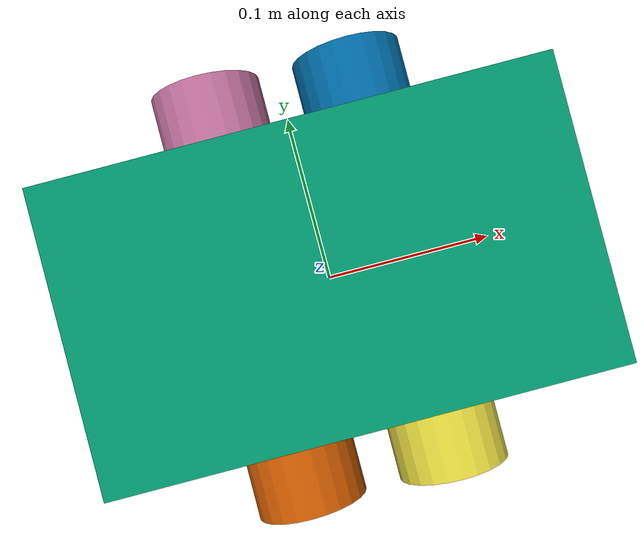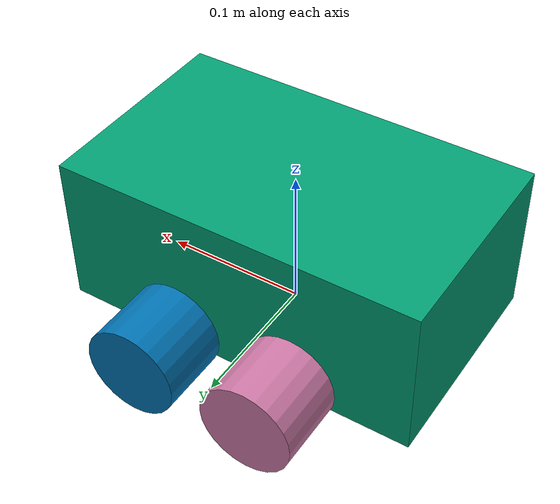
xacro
<?xml version="1.0"?>
<robot xmlns:xacro="http://www.ros.org/wiki/xacro">
	<!-- BASE LINK -->
	<link name="base_link">

	</link>

	<joint name="base_footprint_joint" type="fixed">
		<parent link="base_link"/>
		<child link="base_footprint"/>
		<origin xyz="0 0 0" rpy="0 0 0"/>
	</joint>

	<link name="base_footprint">
	</link>

	<!-- CHASSIS -->
	<joint name="chassis_joint" type="fixed">
		<parent link="base_link"/>
		<child link="chassis"/>
		<origin xyz="-0.1275 0 0"/>
	</joint>

	<link name="chassis">
		<visual>
			<origin xyz="0.1275 0 0.054"/>
			<geometry>
				<box size="0.255 0.151 0.108"/>
			</geometry>
		</visual>
	</link>

	<!-- FRONT RIGHT WHEEL -->
	<joint name="fr_wheel_joint" type="fixed">
		<parent link="base_link"/>
		<child link="fr_wheel"/>
		<origin xyz="0.043 -0.101 0.0125" rpy="${pi/2} 0 0"/>
	</joint>

	<link name="fr_wheel">
		<visual>
			<geometry>
				<cylinder radius="0.0325" length="0.051"/>
			</geometry>
		</visual>
	</link>

	<!-- FRONT LEFT WHEEL -->
	<joint name="fl_wheel_joint" type="fixed">
		<parent link="base_link"/>
		<child link="fl_wheel"/>
		<origin xyz="0.043 0.101 0.0125" rpy="-${pi/2} 0 0"/>
	</joint>

	<link name="fl_wheel">
		<visual>
			<geometry>
				<cylinder radius="0.0325" length="0.051"/>
			</geometry>
		</visual>
	</link>

	<!-- BACK RIGHT WHEEL -->
	<joint name="br_wheel_joint" type="fixed">
		<parent link="base_link"/>
		<child link="br_wheel"/>
		<origin xyz="-0.043 -0.101 0.0125" rpy="${pi/2} 0 0"/>
	</joint>

	<link name="br_wheel">
		<visual>
			<geometry>
				<cylinder radius="0.0325" length="0.051"/>
			</geometry>
		</visual>
	</link>

	<!-- BACK LEFT WHEEL -->
	<joint name="bl_wheel_joint" type="fixed">
		<parent link="base_link"/>
		<child link="bl_wheel"/>
		<origin xyz="-0.043 0.101 0.0125" rpy="-${pi/2} 0 0"/>
	</joint>

	<link name="bl_wheel">
		<visual>
			<geometry>
				<cylinder radius="0.0325" length="0.051"/>
			</geometry>
		</visual>
	</link>

</robot>
